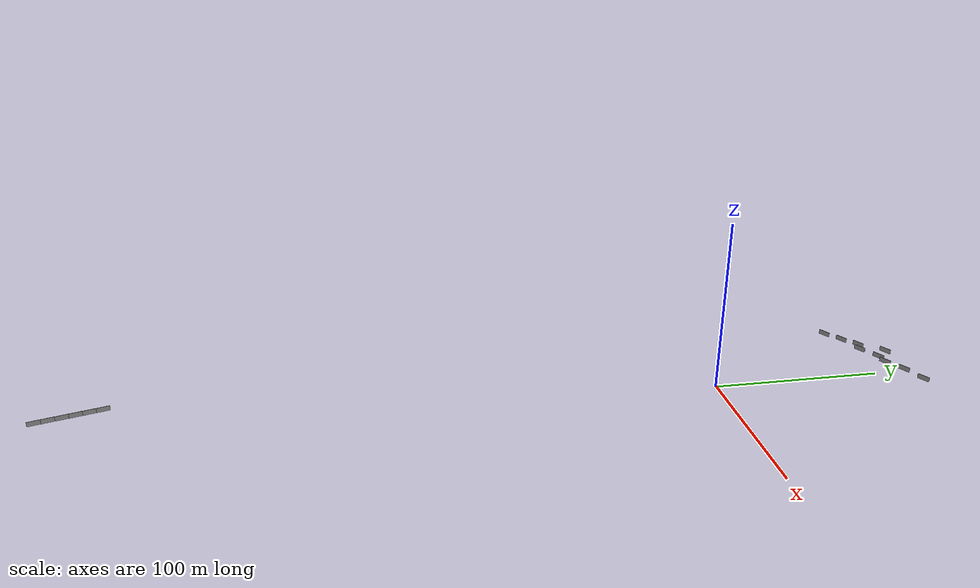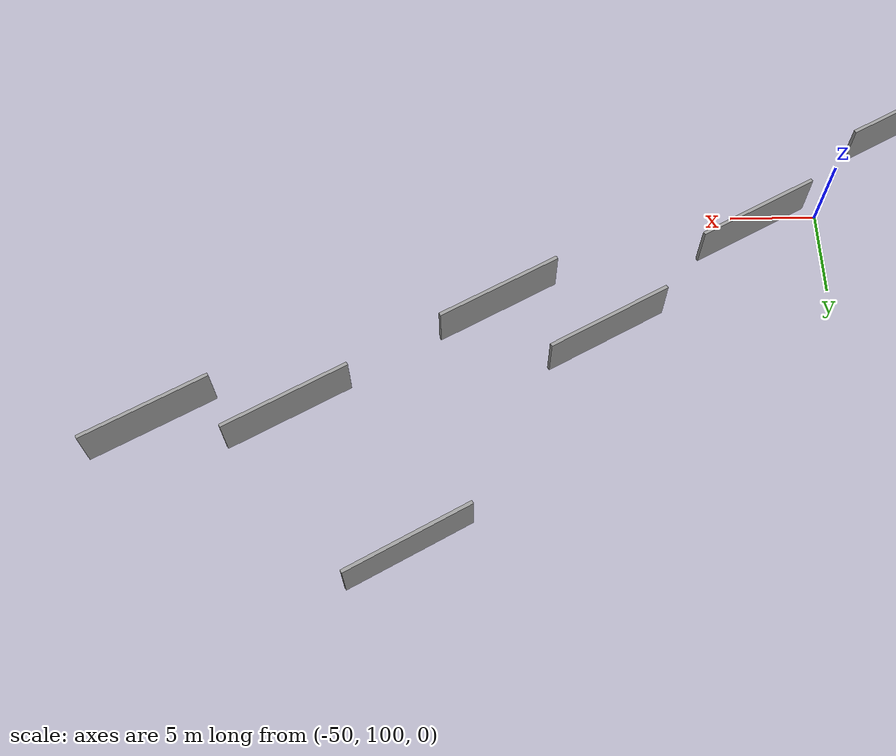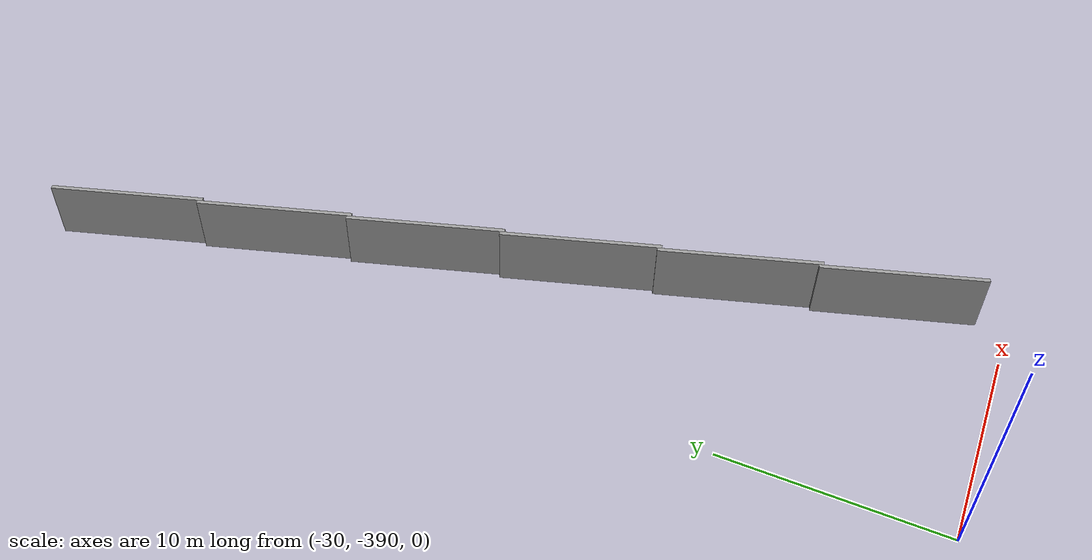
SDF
<sdf version="1.6">
 <world name="default">
  <light name="sun" type="directional">
   <pose>0 0 10 0 -0 0</pose>
   <diffuse>0.8 0.8 0.8 1</diffuse>
   <specular>0.2 0.2 0.2 1</specular>
   <attenuation>
    <range>1000</range>
    <constant>0.9</constant>
    <linear>0.01</linear>
    <quadratic>0.001</quadratic>
   </attenuation>
   <direction>-0.5 0.1 -0.9</direction>
  </light>
  <gravity>0 0 -9.8</gravity>
  <magnetic_field>6e-06 2.3e-05 -4.2e-05</magnetic_field>
  <atmosphere type="adiabatic"/>
  <physics name="default_physics" default="0" type="ode">
   <max_step_size>0.001</max_step_size>
   <real_time_factor>1</real_time_factor>
   <real_time_update_rate>1000</real_time_update_rate>
  </physics>
  <scene><ambient>0.4 0.4 0.4 1</ambient><background>0.7 0.7 0.7 1</background><shadows>1</shadows></scene>
  <audio><device>default</device></audio>
  <spherical_coordinates>
   <surface_model>EARTH_WGS84</surface_model>
   <latitude_deg>0</latitude_deg>
   <longitude_deg>0</longitude_deg>
   <elevation>0</elevation>
   <heading_deg>0</heading_deg>
  </spherical_coordinates>
  <model name="grey_wall">
   <static>1</static>
   <link name="link">
    <pose>0 0 1.4 0 -0 0</pose>
    <collision name="collision"><geometry><box><size>7.5 0.2 2.8</size></box></geometry></collision>
    <visual name="visual">
     <cast_shadows>0</cast_shadows>
     <geometry><box><size>7.5 0.2 2.8</size></box></geometry>
     <material>
      <script>
       <uri>model://grey_wall/materials/scripts</uri>
       <uri>model://grey_wall/materials/textures</uri>
       <name>vrc/grey_wall</name>
      </script>
     </material>
    </visual>
   </link>
   <pose>-29 -350 0 0 -0 1.87601</pose>
  </model>
  <model name="grey_wall_clone">
   <static>1</static>
   <link name="link">
    <pose>0 0 1.4 0 -0 0</pose>
    <collision name="collision"><geometry><box><size>7.5 0.2 2.8</size></box></geometry></collision>
    <visual name="visual">
     <cast_shadows>0</cast_shadows>
     <geometry><box><size>7.5 0.2 2.8</size></box></geometry>
     <material>
      <script>
       <uri>model://grey_wall/materials/scripts</uri>
       <uri>model://grey_wall/materials/textures</uri>
       <name>vrc/grey_wall</name>
      </script>
     </material>
    </visual>
   </link>
   <pose>-27 -357 0 0 -0 1.87601</pose>
  </model>
  <model name="grey_wall_clone_0">
   <static>1</static>
   <link name="link">
    <pose>0 0 1.4 0 -0 0</pose>
    <collision name="collision"><geometry><box><size>7.5 0.2 2.8</size></box></geometry></collision>
    <visual name="visual">
     <cast_shadows>0</cast_shadows>
     <geometry><box><size>7.5 0.2 2.8</size></box></geometry>
     <material>
      <script>
       <uri>model://grey_wall/materials/scripts</uri>
       <uri>model://grey_wall/materials/textures</uri>
       <name>vrc/grey_wall</name>
      </script>
     </material>
    </visual>
   </link>
   <pose>-25 -364 0 0 -0 1.87601</pose>
  </model>
  <model name="grey_wall_clone_0_clone">
   <static>1</static>
   <link name="link">
    <pose>0 0 1.4 0 -0 0</pose>
    <collision name="collision"><geometry><box><size>7.5 0.2 2.8</size></box></geometry></collision>
    <visual name="visual">
     <cast_shadows>0</cast_shadows>
     <geometry><box><size>7.5 0.2 2.8</size></box></geometry>
     <material>
      <script>
       <uri>model://grey_wall/materials/scripts</uri>
       <uri>model://grey_wall/materials/textures</uri>
       <name>vrc/grey_wall</name>
      </script>
     </material>
    </visual>
   </link>
   <pose>-23 -371 0 0 -0 1.87601</pose>
  </model>
  <model name="grey_wall_clone_0_clone_clone">
   <static>1</static>
   <link name="link">
    <pose>0 0 1.4 0 -0 0</pose>
    <collision name="collision"><geometry><box><size>7.5 0.2 2.8</size></box></geometry></collision>
    <visual name="visual">
     <cast_shadows>0</cast_shadows>
     <geometry><box><size>7.5 0.2 2.8</size></box></geometry>
     <material>
      <script>
       <uri>model://grey_wall/materials/scripts</uri>
       <uri>model://grey_wall/materials/textures</uri>
       <name>vrc/grey_wall</name>
      </script>
     </material>
    </visual>
   </link>
   <pose>-21 -378 0 0 -0 1.87601</pose>
  </model>
  <model name="grey_wall_clone_0_clone_clone_clone">
   <static>1</static>
   <link name="link">
    <pose>0 0 1.4 0 -0 0</pose>
    <collision name="collision"><geometry><box><size>7.5 0.2 2.8</size></box></geometry></collision>
    <visual name="visual">
     <cast_shadows>0</cast_shadows>
     <geometry><box><size>7.5 0.2 2.8</size></box></geometry>
     <material>
      <script>
       <uri>model://grey_wall/materials/scripts</uri>
       <uri>model://grey_wall/materials/textures</uri>
       <name>vrc/grey_wall</name>
      </script>
     </material>
    </visual>
   </link>
   <pose>-19 -385 0 0 -0 1.87601</pose>
  </model>
  <model name="grey_wall_0">
   <static>1</static>
   <link name="link">
    <pose>0 0 1.4 0 -0 0</pose>
    <collision name="collision"><geometry><box><size>7.5 0.2 2.8</size></box></geometry></collision>
    <visual name="visual">
     <cast_shadows>0</cast_shadows>
     <geometry><box><size>7.5 0.2 2.8</size></box></geometry>
     <material>
      <script>
       <uri>model://grey_wall/materials/scripts</uri>
       <uri>model://grey_wall/materials/textures</uri>
       <name>vrc/grey_wall</name>
      </script>
     </material>
    </visual>
   </link>
   <pose>-55.6328 94.0306 0 0 -0 0.495089</pose>
  </model>
  <model name="grey_wall_0_clone">
   <static>1</static>
   <link name="link">
    <pose>0 0 1.4 0 -0 0</pose>
    <collision name="collision"><geometry><box><size>7.5 0.2 2.8</size></box></geometry></collision>
    <visual name="visual">
     <cast_shadows>0</cast_shadows>
     <geometry><box><size>7.5 0.2 2.8</size></box></geometry>
     <material>
      <script>
       <uri>model://grey_wall/materials/scripts</uri>
       <uri>model://grey_wall/materials/textures</uri>
       <name>vrc/grey_wall</name>
      </script>
     </material>
    </visual>
   </link>
   <pose>-46 101 0 0 -0 0.495089</pose>
  </model>
  <model name="grey_wall_0_clone_0">
   <static>1</static>
   <link name="link">
    <pose>0 0 1.4 0 -0 0</pose>
    <collision name="collision"><geometry><box><size>7.5 0.2 2.8</size></box></geometry></collision>
    <visual name="visual">
     <cast_shadows>0</cast_shadows>
     <geometry><box><size>7.5 0.2 2.8</size></box></geometry>
     <material>
      <script>
       <uri>model://grey_wall/materials/scripts</uri>
       <uri>model://grey_wall/materials/textures</uri>
       <name>vrc/grey_wall</name>
      </script>
     </material>
    </visual>
   </link>
   <pose>-37 108 0 0 -0 0.495089</pose>
  </model>
  <model name="grey_wall_0_clone_1">
   <static>1</static>
   <link name="link">
    <pose>0 0 1.4 0 -0 0</pose>
    <collision name="collision"><geometry><box><size>7.5 0.2 2.8</size></box></geometry></collision>
    <visual name="visual">
     <cast_shadows>0</cast_shadows>
     <geometry><box><size>7.5 0.2 2.8</size></box></geometry>
     <material>
      <script>
       <uri>model://grey_wall/materials/scripts</uri>
       <uri>model://grey_wall/materials/textures</uri>
       <name>vrc/grey_wall</name>
      </script>
     </material>
    </visual>
   </link>
   <pose>-31 106 0 0 -0 0.495089</pose>
  </model>
  <model name="grey_wall_0_clone_2">
   <static>1</static>
   <link name="link">
    <pose>0 0 1.4 0 -0 0</pose>
    <collision name="collision"><geometry><box><size>7.5 0.2 2.8</size></box></geometry></collision>
    <visual name="visual">
     <cast_shadows>0</cast_shadows>
     <geometry><box><size>7.5 0.2 2.8</size></box></geometry>
     <material>
      <script>
       <uri>model://grey_wall/materials/scripts</uri>
       <uri>model://grey_wall/materials/textures</uri>
       <name>vrc/grey_wall</name>
      </script>
     </material>
    </visual>
   </link>
   <pose>-19.4131 112.48 0 0 -0 0.495089</pose>
  </model>
  <model name="grey_wall_0_clone_3">
   <static>1</static>
   <link name="link">
    <pose>0 0 1.4 0 -0 0</pose>
    <collision name="collision"><geometry><box><size>7.5 0.2 2.8</size></box></geometry></collision>
    <visual name="visual">
     <cast_shadows>0</cast_shadows>
     <geometry><box><size>7.5 0.2 2.8</size></box></geometry>
     <material>
      <script>
       <uri>model://grey_wall/materials/scripts</uri>
       <uri>model://grey_wall/materials/textures</uri>
       <name>vrc/grey_wall</name>
      </script>
     </material>
    </visual>
   </link>
   <pose>-26 120.508 0 0 -0 0.495089</pose>
  </model>
  <model name="grey_wall_0_clone_4">
   <static>1</static>
   <link name="link">
    <pose>0 0 1.4 0 -0 0</pose>
    <collision name="collision"><geometry><box><size>7.5 0.2 2.8</size></box></geometry></collision>
    <visual name="visual">
     <cast_shadows>0</cast_shadows>
     <geometry><box><size>7.5 0.2 2.8</size></box></geometry>
     <material>
      <script>
       <uri>model://grey_wall/materials/scripts</uri>
       <uri>model://grey_wall/materials/textures</uri>
       <name>vrc/grey_wall</name>
      </script>
     </material>
    </visual>
   </link>
   <pose>-12 113 0 0 -0 0.495089</pose>
  </model>
  <model name="grey_wall_0_clone_5">
   <static>1</static>
   <link name="link">
    <pose>0 0 1.4 0 -0 0</pose>
    <collision name="collision"><geometry><box><size>7.5 0.2 2.8</size></box></geometry></collision>
    <visual name="visual">
     <cast_shadows>0</cast_shadows>
     <geometry><box><size>7.5 0.2 2.8</size></box></geometry>
     <material>
      <script>
       <uri>model://grey_wall/materials/scripts</uri>
       <uri>model://grey_wall/materials/textures</uri>
       <name>vrc/grey_wall</name>
      </script>
     </material>
    </visual>
   </link>
   <pose>-1 119.415 0 0 -0 0.495089</pose>
  </model>
  <model name="grey_wall_0_clone_6">
   <static>1</static>
   <link name="link">
    <pose>0 0 1.4 0 -0 0</pose>
    <collision name="collision"><geometry><box><size>7.5 0.2 2.8</size></box></geometry></collision>
    <visual name="visual">
     <cast_shadows>0</cast_shadows>
     <geometry><box><size>7.5 0.2 2.8</size></box></geometry>
     <material>
      <script>
       <uri>model://grey_wall/materials/scripts</uri>
       <uri>model://grey_wall/materials/textures</uri>
       <name>vrc/grey_wall</name>
      </script>
     </material>
    </visual>
   </link>
   <pose>12.484 124.405 0 0 -0 0.495089</pose>
  </model>
 </world>
</sdf>
